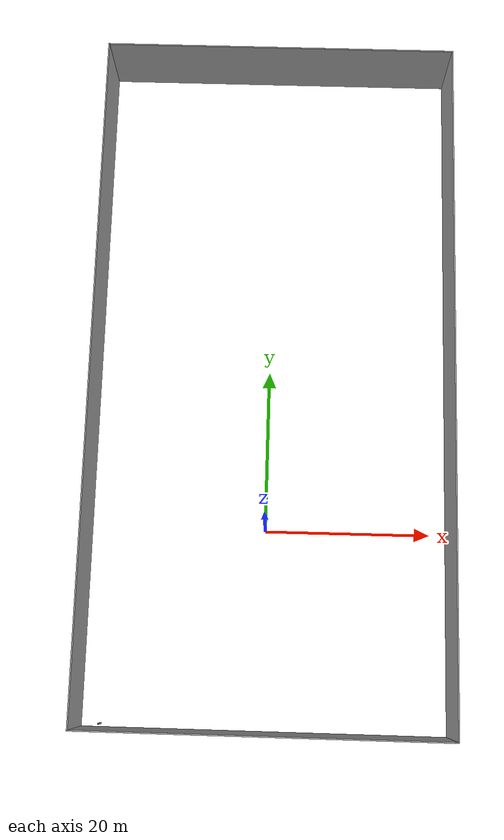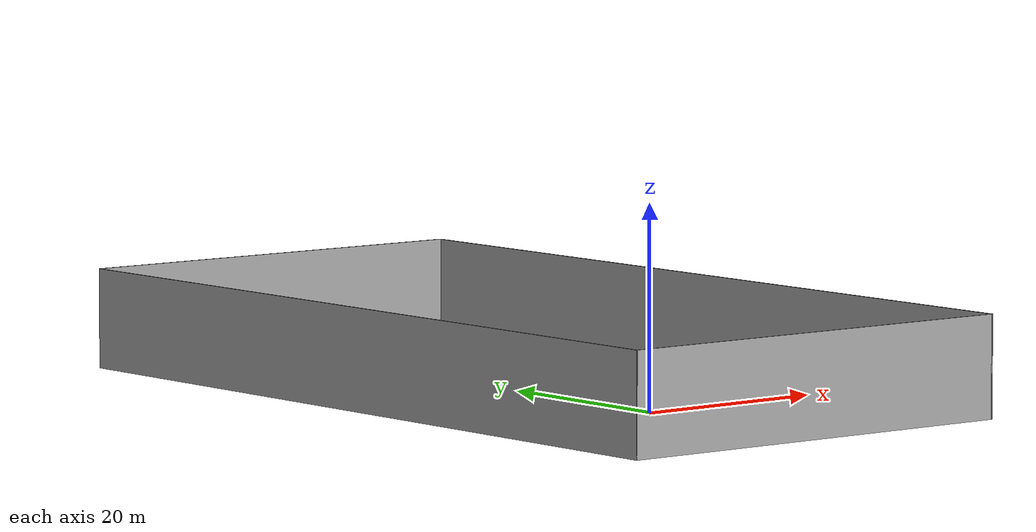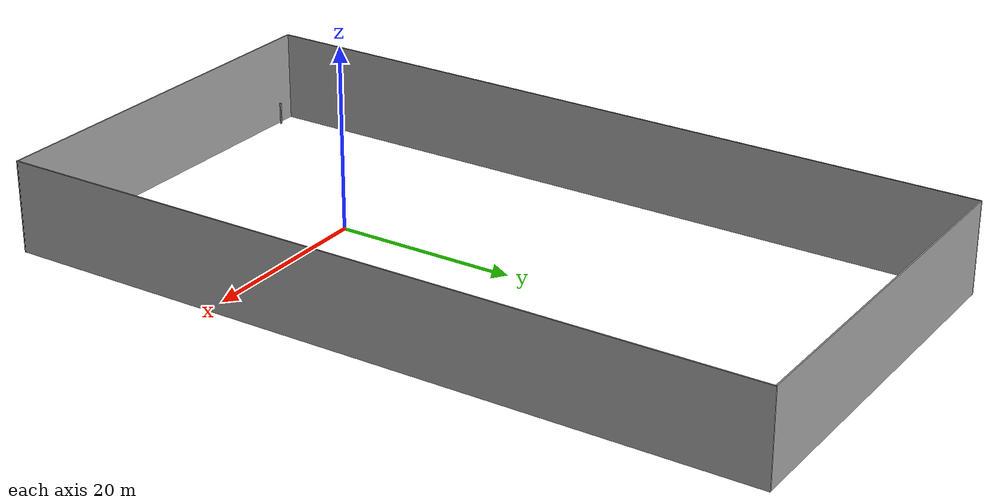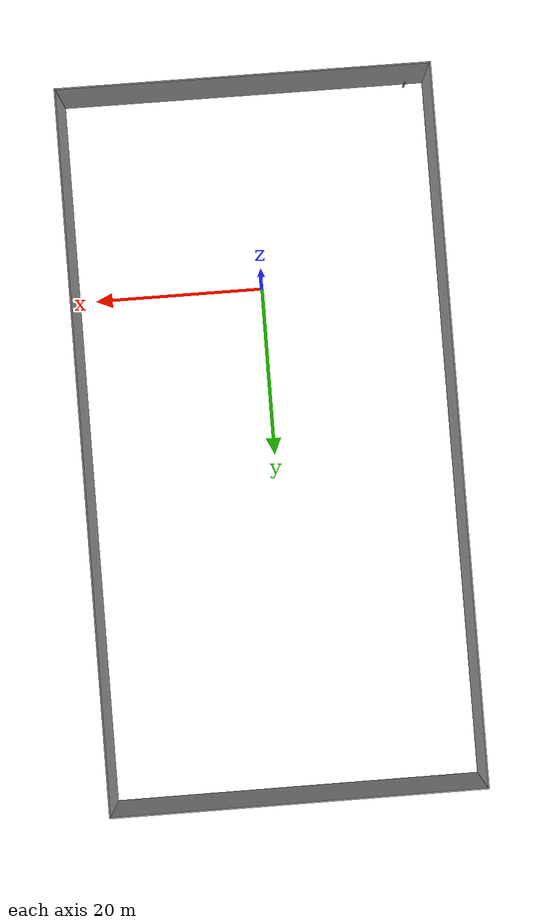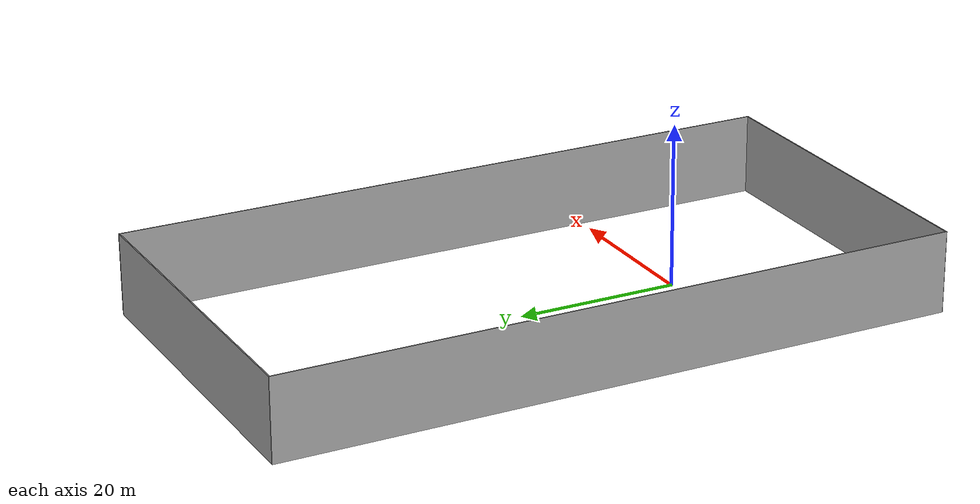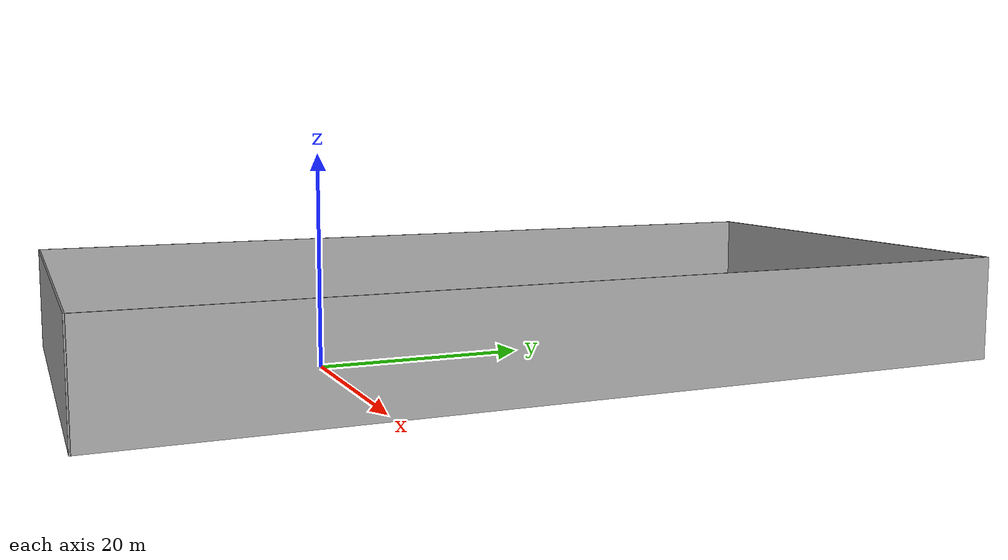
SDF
<?xml version='1.0'?>
<sdf version='1.7'>
  <model name='ngps_walls'>
    <pose>0.358999 18.1073 0 0 -0 0</pose>
    <link name='Wall_2'>
      <collision name='Wall_2_Collision'>
        <geometry>
          <box>
            <size>0.16 0.15 2.5</size>
          </box>
        </geometry>
        <pose>0 0 1.25 0 -0 0</pose>
      </collision>
      <visual name='Wall_2_Visual'>
        <pose>0 0 1.25 0 -0 0</pose>
        <geometry>
          <box>
            <size>0.16 0.15 2.5</size>
          </box>
        </geometry>
        <material>
          <script>
            <uri>file://media/materials/scripts/gazebo.material</uri>
            <name>Gazebo/Grey</name>
          </script>
          <ambient>1 1 1 1</ambient>
        </material>
        <meta>
          <layer>0</layer>
        </meta>
      </visual>
      <pose>-19.316 -41.2141 0 0 -0 0</pose>
    </link>
    <link name='Wall_4'>
      <collision name='Wall_4_Collision'>
        <geometry>
          <box>
            <size>83.685 0.15 10</size>
          </box>
        </geometry>
        <pose>0 0 5 0 -0 0</pose>
      </collision>
      <visual name='Wall_4_Visual'>
        <pose>0 0 5 0 -0 0</pose>
        <geometry>
          <box>
            <size>83.685 0.15 10</size>
          </box>
        </geometry>
        <material>
          <script>
            <uri>file://media/materials/scripts/gazebo.material</uri>
            <name>Gazebo/Grey</name>
          </script>
          <ambient>1 1 1 1</ambient>
        </material>
        <meta>
          <layer>0</layer>
        </meta>
      </visual>
      <pose>-21.675 0.125213 0 0 -0 1.5708</pose>
    </link>
    <link name='Wall_5'>
      <collision name='Wall_5_Collision'>
        <geometry>
          <box>
            <size>43.5 0.15 10</size>
          </box>
        </geometry>
        <pose>0 0 5 0 -0 0</pose>
      </collision>
      <visual name='Wall_5_Visual'>
        <pose>0 0 5 0 -0 0</pose>
        <geometry>
          <box>
            <size>43.5 0.15 10</size>
          </box>
        </geometry>
        <material>
          <script>
            <uri>file://media/materials/scripts/gazebo.material</uri>
            <name>Gazebo/Grey</name>
          </script>
          <ambient>1 1 1 1</ambient>
        </material>
        <meta>
          <layer>0</layer>
        </meta>
      </visual>
      <pose>1e-06 41.8927 0 0 -0 0</pose>
    </link>
    <link name='Wall_6'>
      <collision name='Wall_6_Collision'>
        <geometry>
          <box>
            <size>83.935 0.15 10</size>
          </box>
        </geometry>
        <pose>0 0 5 0 -0 0</pose>
      </collision>
      <visual name='Wall_6_Visual'>
        <pose>0 0 5 0 -0 0</pose>
        <geometry>
          <box>
            <size>83.935 0.15 10</size>
          </box>
        </geometry>
        <material>
          <script>
            <uri>file://media/materials/scripts/gazebo.material</uri>
            <name>Gazebo/Grey</name>
          </script>
          <ambient>1 1 1 1</ambient>
        </material>
        <meta>
          <layer>0</layer>
        </meta>
      </visual>
      <pose>21.675 0.000213 0 0 -0 -1.5708</pose>
    </link>
    <link name='Wall_7'>
      <collision name='Wall_7_Collision'>
        <geometry>
          <box>
            <size>43.5 0.15 10</size>
          </box>
        </geometry>
        <pose>0 0 5 0 -0 0</pose>
      </collision>
      <visual name='Wall_7_Visual'>
        <pose>0 0 5 0 -0 0</pose>
        <geometry>
          <box>
            <size>43.5 0.15 10</size>
          </box>
        </geometry>
        <material>
          <script>
            <uri>file://media/materials/scripts/gazebo.material</uri>
            <name>Gazebo/Grey</name>
          </script>
          <ambient>1 1 1 1</ambient>
        </material>
        <meta>
          <layer>0</layer>
        </meta>
      </visual>
      <pose>1e-06 -41.7673 0 0 -0 3.13583</pose>
    </link>
    <static>1</static>
  </model>
</sdf>
